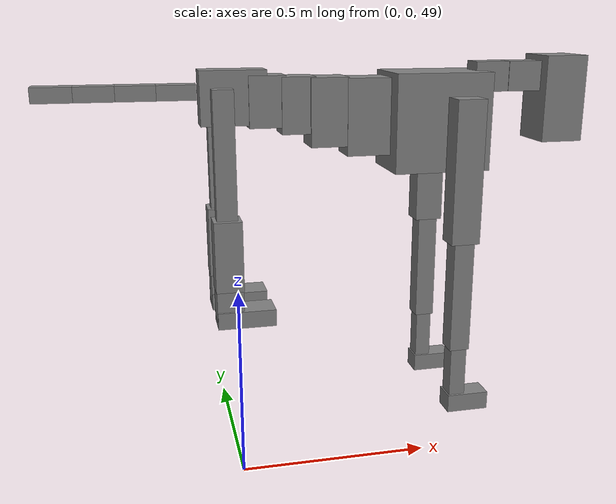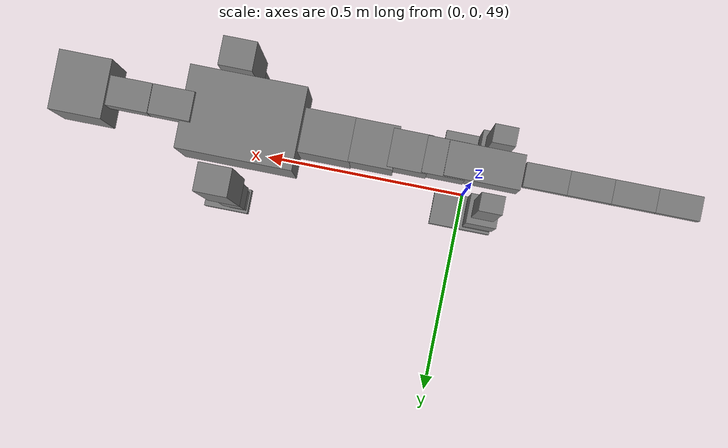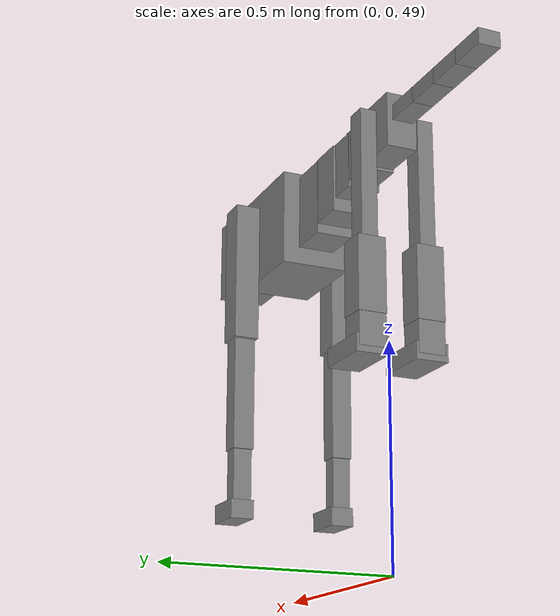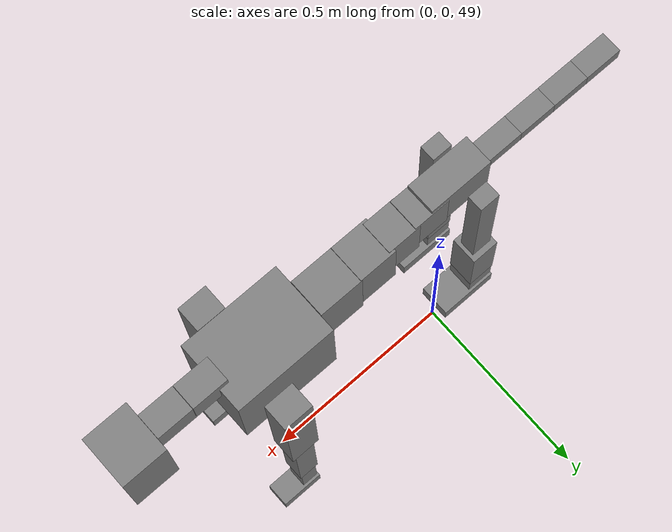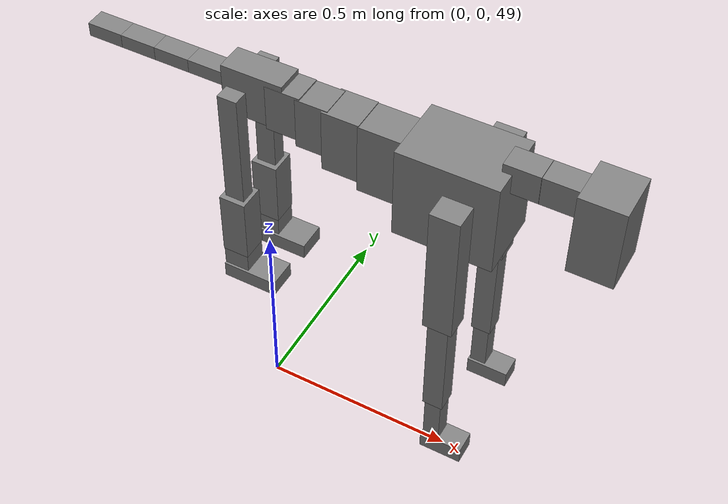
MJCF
<mujoco model="dog">

    <default>
        <joint armature="0.02" stiffness="1" damping="0.2" limited="true"/>
        <geom condim="3" friction="1 0.05 0.05" margin="0.01"/>
        <motor ctrllimited="true" ctrlrange="-1.0 1.0" forcelimited="true" gear="50"/>
    </default>

    <compiler inertiafromgeom="true" angle="radian"/>

    <option timestep="0.016" iterations="50" tolerance="1e-10" solver="Newton" jacobian="dense" cone="pyramidal"/>

    <size nconmax="20000" njmax="60000" nstack="5000000"/>
    <visual>
        <map force="0.1" zfar="30"/>
        <rgba haze="0.15 0.25 0.35 1"/>
        <quality shadowsize="2048"/>
        <global offwidth="800" offheight="800"/>
    </visual>

    <asset>
        <texture type="skybox" builtin="gradient" rgb1="0.3 0.5 0.7" rgb2="0 0 0" width="512" height="512"/>
        <texture name="texplane" type="2d" builtin="checker" rgb1=".2 .3 .4" rgb2=".1 0.15 0.2" width="512" height="512"
                 mark="cross" markrgb=".8 .8 .8"/>
        <texture name="texgeom" type="cube" builtin="flat" mark="cross" width="127" height="1278" rgb1="0.8 0.6 0.4"
                 rgb2="0.8 0.6 0.4" markrgb="1 1 1" random="0.01"/>

        <material name="matplane" reflectance="0.3" texture="texplane" texrepeat="1 1" texuniform="true"/>
        <material name="matgeom" texture="texgeom" texuniform="true" rgba="0.8 0.6 .4 1"/>
    </asset>

    <worldbody>
        <geom name="floor" pos="0 0 0" size="0 0 .25" type="plane" material="matplane" condim="3"/>

        <light directional="false" diffuse=".2 .2 .2" specular="0 0 0" pos="0 0 5" dir="0 0 -1" castshadow="false"/>
        <light mode="targetbodycom" target="torso" directional="false" diffuse=".8 .8 .8" specular="0.3 0.3 0.3"
               pos="0 0 4.0" dir="0 0 -1"/>

        <body name="root" pos="0 0 50">
            <freejoint name="root_1"/>
            <geom type="box" pos="0 0 -0.02" size="0.0774  0.0358  0.063" density="2030"/>

            <body name="spine1" pos="0.054 0 0">
                <joint name="spine1_y" axis="0 1 0" range="0 0.7" limited="true"/>
                <geom type="box" pos="0.02375 0 -0.03" size="0.04375  0.0375  0.05985" density="2030"/>

                <body name="spine2" pos="0.0612 0 0">
                    <joint name="spine2_y" axis="0 1 0" range="-0.15 0.15" limited="true"/>
                    <geom type="box" pos="0.03555  0  -0.04" size="0.04055  0.039  0.06615" density="2030"/>

                    <body name="spine3" pos="0.0730 0 0">
                        <joint name="spine3_y" axis="0 1 0" range="-0.15 0.15" limited="true"/>
                        <geom type="box" pos="0.03555  0  -0.057" size="0.04555  0.0445  0.081" density="2030"/>

                        <body name="spine4" pos="0.0780 0 0">
                            <joint name="spine4_y" axis="0 1 0" range="-0.15 0.15" limited="true"/>
                            <geom type="box" pos="0.05265  0  -0.07" size="0.05265  0.045  0.09135" density="2030"/>

                            <body name="torso" pos="0.1082 0 0">
                                <joint name="torso_y" axis="0 1 0" range="-0.15 0.15" limited="true"/>
                                <geom type="box" pos="0.11925  0  -0.085" size="0.11925  0.085  0.11745"
                                      density="2030"/>

                                <body name="neck1" pos="0.2160  0   0.0180">
                                    <joint name="neck1_y" axis="0 1 0" range="-1.2  -1" limited="true"/>
                                    <geom type="box" pos="0.0423  0  0" size="0.0423  0.03  0.036" density="2325"/>

                                    <body name="neck2" pos="0.0853  0  0">
                                        <joint name="neck2_y" axis="0 1 0" range="0.1  0" limited="true"/>
                                        <geom type="box" pos="0.0423  0  0" size="0.0423  0.03  0.036" density="2325"/>

                                        <body name="head" pos="0.0853  0  0">
                                            <joint name="head_y" axis="0 1 0" range="-0.3  -0.2" limited="true"/>
                                            <geom type="box" pos="0.0531  0  -0.055" size="0.0531  0.06  0.1044"
                                                  density="4030"/>

                                        </body>
                                    </body>
                                </body>

                                <body name="front_shoulder" pos="0.156  0   -0.0480">
                                    <joint name="front_shoulder_y" axis="0 1 0" range="-1 1.5" limited="true"/>
                                    <geom type="box" pos="0 0.13 -0.1455" size="0.0354  0.0303  0.1721" density="1158"/>
                                    <geom type="box" pos="0 -0.13 -0.1455" size="0.0354  0.0303  0.1721"
                                          density="1158"/>

                                    <body name="front_elbow" pos="0  0  -0.2909">
                                        <joint name="front_elbow_y" axis="0 1 0" range="-2 0" limited="true"/>
                                        <geom type="box" pos="0 0.13 -0.1506" size="0.0250  0.0256  0.1506"
                                              density="1081"/>
                                        <geom type="box" pos="0 -0.13 -0.1506" size="0.0250  0.0256  0.1506"
                                              density="1081"/>

                                        <body name="front_wrist" pos="0  0  -0.3012">
                                            <joint name="front_wrist_y" axis="0 1 0" range="-0.2 0" limited="true"/>
                                            <geom type="box" pos="0 0.13 -0.0687" size="0.0202  0.0225  0.0818"
                                                  density="1664"/>
                                            <geom type="box" pos="0 -0.13 -0.0687" size="0.0202  0.0225  0.0818"
                                                  density="1664"/>

                                            <body name="front_finger_end" pos="0  0  -0.1373">
                                                <joint name="front_finger_y" axis="0 1 0" range="-0.4 1"
                                                       limited="true"/>
                                                <geom type="box" pos="0.0288  0.13  -0.0076"
                                                      size="0.0527  0.0288  0.0226" density="1515"/>
                                                <geom type="box" pos="0.0288  -0.13  -0.0076"
                                                      size="0.0527  0.0288  0.0226" density="1515"/>

                                            </body>

                                        </body>
                                    </body>
                                </body>

                            </body>
                        </body>
                    </body>
                </body>
            </body>

            <body name="back_hip" pos="-0.03 0 -0.018">
                <joint name="back_hip_y" axis="0 1 0" range="-1.5 0.3" limited="true"/>
                <geom type="box" pos="0 0.07 -0.1455" size="0.0244  0.0191  0.1683" density="1154"/>
                <geom type="box" pos="0 -0.07 -0.1455" size="0.0244  0.0191  0.1683" density="1154"/>

                <body name="back_knee" pos="0  0  -0.2909">
                    <joint name="back_knee_y" axis="0 1 0" range="0 2.8" limited="true"/>
                    <geom type="box" pos="0 0.07 -0.0693" size="0.0333  0.0328  0.0849" density="1227"/>
                    <geom type="box" pos="0 -0.07 -0.0693" size="0.0333  0.0328  0.0849" density="1227"/>

                    <body name="back_ankle" pos="0  0  -0.1387">
                        <joint name="back_ankle_y" axis="0 1 0" range="-2.2 0" limited="true"/>
                        <geom type="box" pos="0 0.07 -0.0396" size="0.0319  0.0319  0.0508" density="1284"/>
                        <geom type="box" pos="0 -0.07 -0.0396" size="0.0319  0.0319  0.0508" density="1284"/>

                        <body name="back_toe_end" pos="0  0  -0.0792">
                            <joint name="back_toe_y" axis="0 1 0" range="-0.4 1" limited="true"/>
                            <geom type="box" pos="0.0379  0.07  -0.0054" size="0.0695  0.0379  0.0204" density="1515"/>
                            <geom type="box" pos="0.0379  -0.07  -0.0054" size="0.0695  0.0379  0.0204" density="1515"/>

                        </body>
                    </body>
                </body>
            </body>

            <body name="tail1" pos="-0.074 0 -0.006">
                <joint name="tail1_y" axis="0 1 0" range="-0.2 0.2" limited="true"/>
                <geom type="box" pos="-0.0536  0  0" size="0.045  0.025  0.0175" density="1587"/>

                <body name="tail2" pos="-0.09 0 0">
                    <joint name="tail2_y" axis="0 1 0" range="-0.2 0.2" limited="true"/>
                    <geom type="box" pos="-0.0536  0  0" size="0.045  0.025  0.0175" density="1587"/>

                    <body name="tail3" pos="-0.09 0 0">
                        <joint name="tail3_y" axis="0 1 0" range="-0.2 0.2" limited="true"/>
                        <geom type="box" pos="-0.0536  0  0" size="0.045  0.025  0.0175" density="1587"/>

                        <body name="tail4" pos="-0.09 0 0">
                            <joint name="tail4_y" axis="0 1 0" range="-0.2 0.2" limited="true"/>
                            <geom type="box" pos="-0.0536  0  0" size="0.045  0.025  0.0175" density="1587"/>

                        </body>
                    </body>
                </body>
            </body>
        </body>
    </worldbody>

    <actuator>
        <motor joint="spine1_y" forcerange="-150 150     "/>
        <motor joint="spine2_y" forcerange="-150 150     "/>
        <motor joint="spine3_y" forcerange="-150 150     "/>
        <motor joint="spine4_y" forcerange="-150 150     "/>
        <motor joint="torso_y" forcerange="-150 150     "/>
        <motor joint="neck1_y" forcerange="-100 100       "/>
        <motor joint="neck2_y" forcerange="-100 100       "/>
        <motor joint="head_y" forcerange="-150 150       "/>
        <motor joint="front_shoulder_y" forcerange="-129.05 172.69"/>
        <motor joint="front_elbow_y" forcerange="-163.57 122.33"/>
        <motor joint="front_wrist_y" forcerange="-61.76 118.21"/>
        <motor joint="front_finger_y" forcerange="-39.24 74.21"/>
        <motor joint="back_hip_y" forcerange="-229.79 225.43"/>
        <motor joint="back_knee_y" forcerange="-293.29 384.31"/>
        <motor joint="back_angle_y" forcerange="-216.27 193.87"/>
        <motor joint="back_toe_y" forcerange="-100.37 122.75"/>
        <motor joint="tail1_y" forcerange="-50 50     "/>
        <motor joint="tail2_y" forcerange="-50 50     "/>
        <motor joint="tail3_y" forcerange="-50 50     "/>
        <motor joint="tail4_y" forcerange="-50 50     "/>
    </actuator>
</mujoco>
